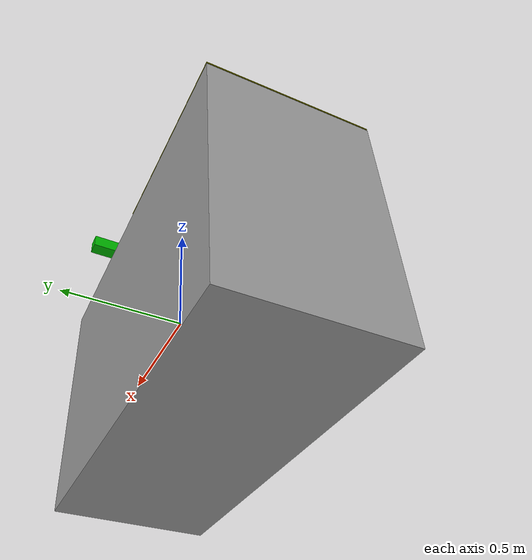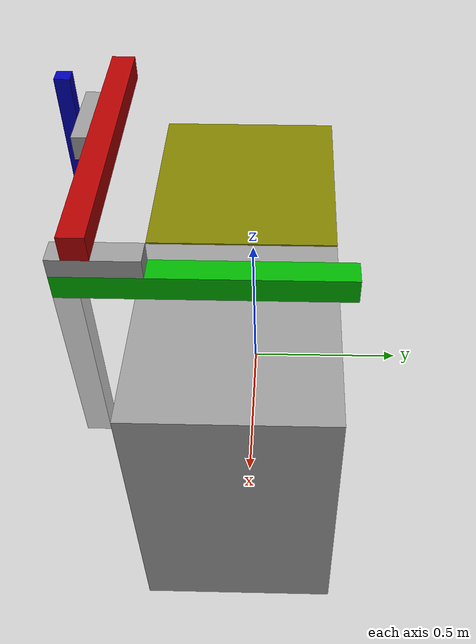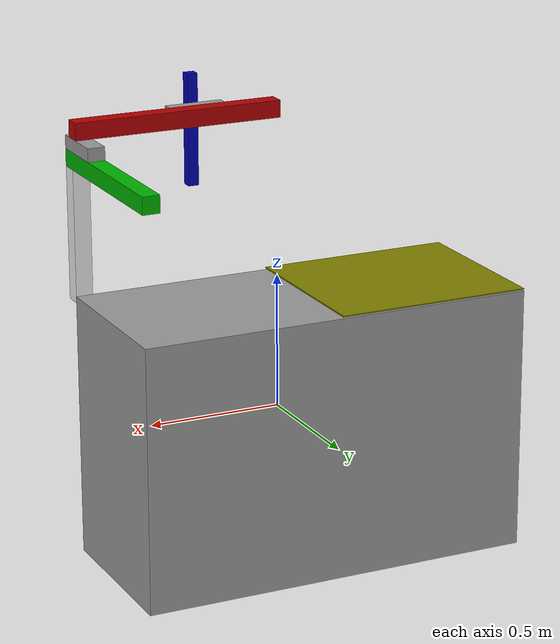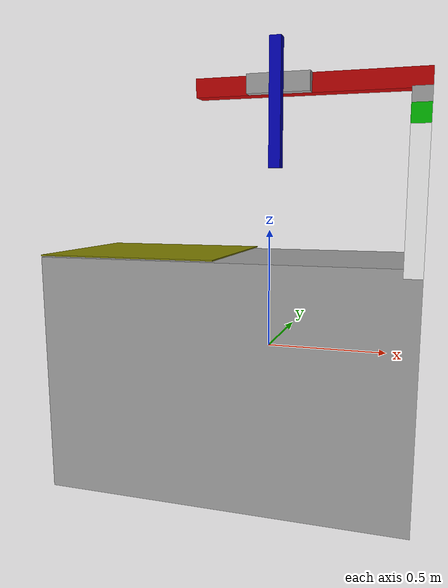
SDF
<?xml version='1.0'?>
<sdf version='1.7'>
  <model name='deman'>
    <link name='link_1'>
      <inertial>
        <mass>1</mass>
        <inertia>
          <ixx>0.166667</ixx>
          <ixy>0</ixy>
          <ixz>0</ixz>
          <iyy>0.166667</iyy>
          <iyz>0</iyz>
          <izz>0.166667</izz>
        </inertia>
        <pose>0 0 0 0 -0 0</pose>
      </inertial>
      <pose>-0.118333 -0.0475 -0.1025 0 -0 0</pose>
      <gravity>1</gravity>
      <self_collide>0</self_collide>
      <kinematic>0</kinematic>
      <enable_wind>0</enable_wind>
      <visual name='visual'>
        <pose>0 0 0 0 -0 0</pose>
        <geometry>
          <box>
            <size>1.5 0.65 1</size>
          </box>
        </geometry>
        <material>
          <lighting>1</lighting>
          <script>
            <uri>file://media/materials/scripts/gazebo.material</uri>
            <name>Gazebo/Grey</name>
          </script>
          <shader type='pixel'>
            <normal_map>__default__</normal_map>
          </shader>
          <ambient>1 1 1 1</ambient>
          <diffuse>0.7 0.7 0.7 1</diffuse>
          <specular>0.01 0.01 0.01 1</specular>
          <emissive>0 0 0 1</emissive>
        </material>
        <transparency>0</transparency>
        <cast_shadows>1</cast_shadows>
      </visual>
      <collision name='collision'>
        <laser_retro>0</laser_retro>
        <max_contacts>10</max_contacts>
        <pose>0 0 0 0 -0 0</pose>
        <geometry>
          <box>
            <size>1.5 0.65 1</size>
          </box>
        </geometry>
        <surface>
          <friction>
            <ode>
              <mu>1</mu>
              <mu2>1</mu2>
              <fdir1>0 0 0</fdir1>
              <slip1>0</slip1>
              <slip2>0</slip2>
            </ode>
            <torsional>
              <coefficient>1</coefficient>
              <patch_radius>0</patch_radius>
              <surface_radius>0</surface_radius>
              <use_patch_radius>1</use_patch_radius>
              <ode>
                <slip>0</slip>
              </ode>
            </torsional>
          </friction>
          <bounce>
            <restitution_coefficient>0</restitution_coefficient>
            <threshold>1e+06</threshold>
          </bounce>
          <contact>
            <collide_without_contact>0</collide_without_contact>
            <collide_without_contact_bitmask>1</collide_without_contact_bitmask>
            <collide_bitmask>1</collide_bitmask>
            <ode>
              <soft_cfm>0</soft_cfm>
              <soft_erp>0.2</soft_erp>
              <kp>1e+13</kp>
              <kd>1</kd>
              <max_vel>0.01</max_vel>
              <min_depth>0</min_depth>
            </ode>
            <bullet>
              <split_impulse>1</split_impulse>
              <split_impulse_penetration_threshold>-0.01</split_impulse_penetration_threshold>
              <soft_cfm>0</soft_cfm>
              <soft_erp>0.2</soft_erp>
              <kp>1e+13</kp>
              <kd>1</kd>
            </bullet>
          </contact>
        </surface>
      </collision>
    </link>
    <link name='link_2'>
      <inertial>
        <mass>1</mass>
        <inertia>
          <ixx>0.166667</ixx>
          <ixy>0</ixy>
          <ixz>0</ixz>
          <iyy>0.166667</iyy>
          <iyz>0</iyz>
          <izz>0.166667</izz>
        </inertia>
        <pose>0 0 0 0 -0 0</pose>
      </inertial>
      <pose>0.599167 -0.405 0.6225 0 -0 0</pose>
      <gravity>1</gravity>
      <self_collide>0</self_collide>
      <kinematic>0</kinematic>
      <enable_wind>0</enable_wind>
      <visual name='visual'>
        <pose>0 0 0 0 -0 0</pose>
        <geometry>
          <box>
            <size>0.065 0.065 0.5</size>
          </box>
        </geometry>
        <material>
          <lighting>1</lighting>
          <script>
            <uri>file://media/materials/scripts/gazebo.material</uri>
            <name>Gazebo/White</name>
          </script>
          <shader type='pixel'>
            <normal_map>__default__</normal_map>
          </shader>
          <ambient>1 1 1 1</ambient>
          <diffuse>0.7 0.7 0.7 1</diffuse>
          <specular>0.01 0.01 0.01 1</specular>
          <emissive>0 0 0 1</emissive>
        </material>
        <transparency>0</transparency>
        <cast_shadows>1</cast_shadows>
      </visual>
      <collision name='collision'>
        <laser_retro>0</laser_retro>
        <max_contacts>10</max_contacts>
        <pose>0 0 0 0 -0 0</pose>
        <geometry>
          <box>
            <size>0.065 0.065 0.5</size>
          </box>
        </geometry>
        <surface>
          <friction>
            <ode>
              <mu>1</mu>
              <mu2>1</mu2>
              <fdir1>0 0 0</fdir1>
              <slip1>0</slip1>
              <slip2>0</slip2>
            </ode>
            <torsional>
              <coefficient>1</coefficient>
              <patch_radius>0</patch_radius>
              <surface_radius>0</surface_radius>
              <use_patch_radius>1</use_patch_radius>
              <ode>
                <slip>0</slip>
              </ode>
            </torsional>
          </friction>
          <bounce>
            <restitution_coefficient>0</restitution_coefficient>
            <threshold>1e+06</threshold>
          </bounce>
          <contact>
            <collide_without_contact>0</collide_without_contact>
            <collide_without_contact_bitmask>1</collide_without_contact_bitmask>
            <collide_bitmask>1</collide_bitmask>
            <ode>
              <soft_cfm>0</soft_cfm>
              <soft_erp>0.2</soft_erp>
              <kp>1e+13</kp>
              <kd>1</kd>
              <max_vel>0.01</max_vel>
              <min_depth>0</min_depth>
            </ode>
            <bullet>
              <split_impulse>1</split_impulse>
              <split_impulse_penetration_threshold>-0.01</split_impulse_penetration_threshold>
              <soft_cfm>0</soft_cfm>
              <soft_erp>0.2</soft_erp>
              <kp>1e+13</kp>
              <kd>1</kd>
            </bullet>
          </contact>
        </surface>
      </collision>
    </link>
    <link name='link_2_clone'>
      <inertial>
        <mass>1</mass>
        <inertia>
          <ixx>0.166667</ixx>
          <ixy>0</ixy>
          <ixz>0</ixz>
          <iyy>0.166667</iyy>
          <iyz>0</iyz>
          <izz>0.166667</izz>
        </inertia>
        <pose>0 0 0 0 -0 0</pose>
      </inertial>
      <pose>0.599167 -0.08 0.905 0 -0 0</pose>
      <gravity>1</gravity>
      <self_collide>0</self_collide>
      <kinematic>0</kinematic>
      <enable_wind>0</enable_wind>
      <visual name='visual'>
        <pose>0 0 0 0 -0 0</pose>
        <geometry>
          <box>
            <size>0.065 0.715 0.065</size>
          </box>
        </geometry>
        <material>
          <lighting>1</lighting>
          <script>
            <uri>file://media/materials/scripts/gazebo.material</uri>
            <name>Gazebo/Grey</name>
          </script>
          <shader type='pixel'>
            <normal_map>__default__</normal_map>
          </shader>
          <ambient>0 0.7 0 1</ambient>
          <diffuse>0.7 0.7 0.7 1</diffuse>
          <specular>0.01 0.01 0.01 1</specular>
          <emissive>0 0 0 1</emissive>
        </material>
        <transparency>0</transparency>
        <cast_shadows>1</cast_shadows>
      </visual>
      <collision name='collision'>
        <laser_retro>0</laser_retro>
        <max_contacts>10</max_contacts>
        <pose>0 0 0 0 -0 0</pose>
        <geometry>
          <box>
            <size>0.065 0.715 0.065</size>
          </box>
        </geometry>
        <surface>
          <friction>
            <ode>
              <mu>1</mu>
              <mu2>1</mu2>
              <fdir1>0 0 0</fdir1>
              <slip1>0</slip1>
              <slip2>0</slip2>
            </ode>
            <torsional>
              <coefficient>1</coefficient>
              <patch_radius>0</patch_radius>
              <surface_radius>0</surface_radius>
              <use_patch_radius>1</use_patch_radius>
              <ode>
                <slip>0</slip>
              </ode>
            </torsional>
          </friction>
          <bounce>
            <restitution_coefficient>0</restitution_coefficient>
            <threshold>1e+06</threshold>
          </bounce>
          <contact>
            <collide_without_contact>0</collide_without_contact>
            <collide_without_contact_bitmask>1</collide_without_contact_bitmask>
            <collide_bitmask>1</collide_bitmask>
            <ode>
              <soft_cfm>0</soft_cfm>
              <soft_erp>0.2</soft_erp>
              <kp>1e+13</kp>
              <kd>1</kd>
              <max_vel>0.01</max_vel>
              <min_depth>0</min_depth>
            </ode>
            <bullet>
              <split_impulse>1</split_impulse>
              <split_impulse_penetration_threshold>-0.01</split_impulse_penetration_threshold>
              <soft_cfm>0</soft_cfm>
              <soft_erp>0.2</soft_erp>
              <kp>1e+13</kp>
              <kd>1</kd>
            </bullet>
          </contact>
        </surface>
      </collision>
    </link>
    <link name='link_3'>
      <inertial>
        <mass>1</mass>
        <inertia>
          <ixx>0.166667</ixx>
          <ixy>0</ixy>
          <ixz>0</ixz>
          <iyy>0.166667</iyy>
          <iyz>0</iyz>
          <izz>0.166667</izz>
        </inertia>
        <pose>0 0 0 0 -0 0</pose>
      </inertial>
      <pose>-0.498333 -0.0475 0.4045 0 -0 0</pose>
      <gravity>1</gravity>
      <self_collide>0</self_collide>
      <kinematic>0</kinematic>
      <enable_wind>0</enable_wind>
      <visual name='visual'>
        <pose>0 0 0 0 -0 0</pose>
        <geometry>
          <box>
            <size>0.74 0.65 0.005</size>
          </box>
        </geometry>
        <material>
          <lighting>1</lighting>
          <script>
            <uri>file://media/materials/scripts/gazebo.material</uri>
            <name>Gazebo/Grey</name>
          </script>
          <shader type='pixel'>
            <normal_map>__default__</normal_map>
          </shader>
          <ambient>0.5 0.5 0 1</ambient>
          <diffuse>0.7 0.7 0.7 1</diffuse>
          <specular>0.01 0.01 0.01 1</specular>
          <emissive>0 0 0 1</emissive>
        </material>
        <transparency>0</transparency>
        <cast_shadows>1</cast_shadows>
      </visual>
      <collision name='collision'>
        <laser_retro>0</laser_retro>
        <max_contacts>10</max_contacts>
        <pose>0 0 0 0 -0 0</pose>
        <geometry>
          <box>
            <size>0.74 0.65 0.005</size>
          </box>
        </geometry>
        <surface>
          <friction>
            <ode>
              <mu>1</mu>
              <mu2>1</mu2>
              <fdir1>0 0 0</fdir1>
              <slip1>0</slip1>
              <slip2>0</slip2>
            </ode>
            <torsional>
              <coefficient>1</coefficient>
              <patch_radius>0</patch_radius>
              <surface_radius>0</surface_radius>
              <use_patch_radius>1</use_patch_radius>
              <ode>
                <slip>0</slip>
              </ode>
            </torsional>
          </friction>
          <bounce>
            <restitution_coefficient>0</restitution_coefficient>
            <threshold>1e+06</threshold>
          </bounce>
          <contact>
            <collide_without_contact>0</collide_without_contact>
            <collide_without_contact_bitmask>1</collide_without_contact_bitmask>
            <collide_bitmask>1</collide_bitmask>
            <ode>
              <soft_cfm>0</soft_cfm>
              <soft_erp>0.2</soft_erp>
              <kp>1e+13</kp>
              <kd>1</kd>
              <max_vel>0.01</max_vel>
              <min_depth>0</min_depth>
            </ode>
            <bullet>
              <split_impulse>1</split_impulse>
              <split_impulse_penetration_threshold>-0.01</split_impulse_penetration_threshold>
              <soft_cfm>0</soft_cfm>
              <soft_erp>0.2</soft_erp>
              <kp>1e+13</kp>
              <kd>1</kd>
            </bullet>
          </contact>
        </surface>
      </collision>
    </link>
    <link name='link_4'>
      <inertial>
        <mass>1</mass>
        <inertia>
          <ixx>0.166667</ixx>
          <ixy>0</ixy>
          <ixz>0</ixz>
          <iyy>0.166667</iyy>
          <iyz>0</iyz>
          <izz>0.166667</izz>
        </inertia>
        <pose>0 0 0 0 -0 0</pose>
      </inertial>
      <pose>0.599167 -0.3275 0.9625 0 -0 0</pose>
      <gravity>1</gravity>
      <self_collide>0</self_collide>
      <kinematic>0</kinematic>
      <enable_wind>0</enable_wind>
      <visual name='visual'>
        <pose>0 0 0 0 -0 0</pose>
        <geometry>
          <box>
            <size>0.065 0.22 0.05</size>
          </box>
        </geometry>
        <material>
          <lighting>1</lighting>
          <script>
            <uri>file://media/materials/scripts/gazebo.material</uri>
            <name>Gazebo/Grey</name>
          </script>
          <shader type='pixel'>
            <normal_map>__default__</normal_map>
          </shader>
          <ambient>0.3 0.3 0.3 1</ambient>
          <diffuse>0.7 0.7 0.7 1</diffuse>
          <specular>0.01 0.01 0.01 1</specular>
          <emissive>0 0 0 1</emissive>
        </material>
        <transparency>0</transparency>
        <cast_shadows>1</cast_shadows>
      </visual>
      <collision name='collision'>
        <laser_retro>0</laser_retro>
        <max_contacts>10</max_contacts>
        <pose>0 0 0 0 -0 0</pose>
        <geometry>
          <box>
            <size>0.0143 0.0484 0.0025</size>
          </box>
        </geometry>
        <surface>
          <friction>
            <ode>
              <mu>1</mu>
              <mu2>1</mu2>
              <fdir1>0 0 0</fdir1>
              <slip1>0</slip1>
              <slip2>0</slip2>
            </ode>
            <torsional>
              <coefficient>1</coefficient>
              <patch_radius>0</patch_radius>
              <surface_radius>0</surface_radius>
              <use_patch_radius>1</use_patch_radius>
              <ode>
                <slip>0</slip>
              </ode>
            </torsional>
          </friction>
          <bounce>
            <restitution_coefficient>0</restitution_coefficient>
            <threshold>1e+06</threshold>
          </bounce>
          <contact>
            <collide_without_contact>0</collide_without_contact>
            <collide_without_contact_bitmask>1</collide_without_contact_bitmask>
            <collide_bitmask>1</collide_bitmask>
            <ode>
              <soft_cfm>0</soft_cfm>
              <soft_erp>0.2</soft_erp>
              <kp>1e+13</kp>
              <kd>1</kd>
              <max_vel>0.01</max_vel>
              <min_depth>0</min_depth>
            </ode>
            <bullet>
              <split_impulse>1</split_impulse>
              <split_impulse_penetration_threshold>-0.01</split_impulse_penetration_threshold>
              <soft_cfm>0</soft_cfm>
              <soft_erp>0.2</soft_erp>
              <kp>1e+13</kp>
              <kd>1</kd>
            </bullet>
          </contact>
        </surface>
      </collision>
    </link>
    <link name='link_5'>
      <inertial>
        <mass>1</mass>
        <inertia>
          <ixx>0.166667</ixx>
          <ixy>0</ixy>
          <ixz>0</ixz>
          <iyy>0.166667</iyy>
          <iyz>0</iyz>
          <izz>0.166667</izz>
        </inertia>
        <pose>0 0 0 0 -0 0</pose>
      </inertial>
      <pose>0.229167 -0.36625 1.02 0 -0 0</pose>
      <gravity>1</gravity>
      <self_collide>0</self_collide>
      <kinematic>0</kinematic>
      <enable_wind>0</enable_wind>
      <visual name='visual'>
        <pose>0 0 0 0 -0 0</pose>
        <geometry>
          <box>
            <size>0.805 0.065 0.065</size>
          </box>
        </geometry>
        <material>
          <lighting>1</lighting>
          <script>
            <uri>file://media/materials/scripts/gazebo.material</uri>
            <name>Gazebo/Grey</name>
          </script>
          <shader type='pixel'>
            <normal_map>__default__</normal_map>
          </shader>
          <ambient>0.7 0 0 1</ambient>
          <diffuse>0.7 0.7 0.7 1</diffuse>
          <specular>0.01 0.01 0.01 1</specular>
          <emissive>0 0 0 1</emissive>
        </material>
        <transparency>0</transparency>
        <cast_shadows>1</cast_shadows>
      </visual>
      <collision name='collision'>
        <laser_retro>0</laser_retro>
        <max_contacts>10</max_contacts>
        <pose>0 0 0 0 -0 0</pose>
        <geometry>
          <box>
            <size>0.805 0.065 0.065</size>
          </box>
        </geometry>
        <surface>
          <friction>
            <ode>
              <mu>1</mu>
              <mu2>1</mu2>
              <fdir1>0 0 0</fdir1>
              <slip1>0</slip1>
              <slip2>0</slip2>
            </ode>
            <torsional>
              <coefficient>1</coefficient>
              <patch_radius>0</patch_radius>
              <surface_radius>0</surface_radius>
              <use_patch_radius>1</use_patch_radius>
              <ode>
                <slip>0</slip>
              </ode>
            </torsional>
          </friction>
          <bounce>
            <restitution_coefficient>0</restitution_coefficient>
            <threshold>1e+06</threshold>
          </bounce>
          <contact>
            <collide_without_contact>0</collide_without_contact>
            <collide_without_contact_bitmask>1</collide_without_contact_bitmask>
            <collide_bitmask>1</collide_bitmask>
            <ode>
              <soft_cfm>0</soft_cfm>
              <soft_erp>0.2</soft_erp>
              <kp>1e+13</kp>
              <kd>1</kd>
              <max_vel>0.01</max_vel>
              <min_depth>0</min_depth>
            </ode>
            <bullet>
              <split_impulse>1</split_impulse>
              <split_impulse_penetration_threshold>-0.01</split_impulse_penetration_threshold>
              <soft_cfm>0</soft_cfm>
              <soft_erp>0.2</soft_erp>
              <kp>1e+13</kp>
              <kd>1</kd>
            </bullet>
          </contact>
        </surface>
      </collision>
    </link>
    <link name='link_6'>
      <inertial>
        <mass>1</mass>
        <inertia>
          <ixx>0.166667</ixx>
          <ixy>0</ixy>
          <ixz>0</ixz>
          <iyy>0.166667</iyy>
          <iyz>0</iyz>
          <izz>0.166667</izz>
        </inertia>
        <pose>0 0 0 0 -0 0</pose>
      </inertial>
      <pose>0.131667 -0.41875 1.02 0 -0 0</pose>
      <gravity>1</gravity>
      <self_collide>0</self_collide>
      <kinematic>0</kinematic>
      <enable_wind>0</enable_wind>
      <visual name='visual'>
        <pose>0 0 0 0 -0 0</pose>
        <geometry>
          <box>
            <size>0.22 0.04 0.065</size>
          </box>
        </geometry>
        <material>
          <lighting>1</lighting>
          <script>
            <uri>file://media/materials/scripts/gazebo.material</uri>
            <name>Gazebo/Grey</name>
          </script>
          <shader type='pixel'>
            <normal_map>__default__</normal_map>
          </shader>
          <ambient>0.3 0.3 0.3 1</ambient>
          <diffuse>0.7 0.7 0.7 1</diffuse>
          <specular>0.01 0.01 0.01 1</specular>
          <emissive>0 0 0 1</emissive>
        </material>
        <transparency>0</transparency>
        <cast_shadows>1</cast_shadows>
      </visual>
      <collision name='collision'>
        <laser_retro>0</laser_retro>
        <max_contacts>10</max_contacts>
        <pose>0 0 0 0 -0 0</pose>
        <geometry>
          <box>
            <size>0.22 0.04 0.065</size>
          </box>
        </geometry>
        <surface>
          <friction>
            <ode>
              <mu>1</mu>
              <mu2>1</mu2>
              <fdir1>0 0 0</fdir1>
              <slip1>0</slip1>
              <slip2>0</slip2>
            </ode>
            <torsional>
              <coefficient>1</coefficient>
              <patch_radius>0</patch_radius>
              <surface_radius>0</surface_radius>
              <use_patch_radius>1</use_patch_radius>
              <ode>
                <slip>0</slip>
              </ode>
            </torsional>
          </friction>
          <bounce>
            <restitution_coefficient>0</restitution_coefficient>
            <threshold>1e+06</threshold>
          </bounce>
          <contact>
            <collide_without_contact>0</collide_without_contact>
            <collide_without_contact_bitmask>1</collide_without_contact_bitmask>
            <collide_bitmask>1</collide_bitmask>
            <ode>
              <soft_cfm>0</soft_cfm>
              <soft_erp>0.2</soft_erp>
              <kp>1e+13</kp>
              <kd>1</kd>
              <max_vel>0.01</max_vel>
              <min_depth>0</min_depth>
            </ode>
            <bullet>
              <split_impulse>1</split_impulse>
              <split_impulse_penetration_threshold>-0.01</split_impulse_penetration_threshold>
              <soft_cfm>0</soft_cfm>
              <soft_erp>0.2</soft_erp>
              <kp>1e+13</kp>
              <kd>1</kd>
            </bullet>
          </contact>
        </surface>
      </collision>
    </link>
    <link name='link_7'>
      <inertial>
        <mass>1</mass>
        <inertia>
          <ixx>0.166667</ixx>
          <ixy>0</ixy>
          <ixz>0</ixz>
          <iyy>0.166667</iyy>
          <iyz>0</iyz>
          <izz>0.166667</izz>
        </inertia>
        <pose>0 0 0 0 -0 0</pose>
      </inertial>
      <pose>0.131667 -0.45875 0.949 0 -0 0</pose>
      <gravity>1</gravity>
      <self_collide>0</self_collide>
      <kinematic>0</kinematic>
      <enable_wind>0</enable_wind>
      <visual name='visual'>
        <pose>0 0 0 0 -0 0</pose>
        <geometry>
          <box>
            <size>0.04 0.04 0.422</size>
          </box>
        </geometry>
        <material>
          <lighting>1</lighting>
          <script>
            <uri>file://media/materials/scripts/gazebo.material</uri>
            <name>Gazebo/Grey</name>
          </script>
          <shader type='pixel'>
            <normal_map>__default__</normal_map>
          </shader>
          <ambient>0 0 0.7 1</ambient>
          <diffuse>0.7 0.7 0.7 1</diffuse>
          <specular>0.01 0.01 0.01 1</specular>
          <emissive>0 0 0 1</emissive>
        </material>
        <transparency>0</transparency>
        <cast_shadows>1</cast_shadows>
      </visual>
      <collision name='collision'>
        <laser_retro>0</laser_retro>
        <max_contacts>10</max_contacts>
        <pose>0 0 0 0 -0 0</pose>
        <geometry>
          <box>
            <size>0.04 0.04 0.422</size>
          </box>
        </geometry>
        <surface>
          <friction>
            <ode>
              <mu>1</mu>
              <mu2>1</mu2>
              <fdir1>0 0 0</fdir1>
              <slip1>0</slip1>
              <slip2>0</slip2>
            </ode>
            <torsional>
              <coefficient>1</coefficient>
              <patch_radius>0</patch_radius>
              <surface_radius>0</surface_radius>
              <use_patch_radius>1</use_patch_radius>
              <ode>
                <slip>0</slip>
              </ode>
            </torsional>
          </friction>
          <bounce>
            <restitution_coefficient>0</restitution_coefficient>
            <threshold>1e+06</threshold>
          </bounce>
          <contact>
            <collide_without_contact>0</collide_without_contact>
            <collide_without_contact_bitmask>1</collide_without_contact_bitmask>
            <collide_bitmask>1</collide_bitmask>
            <ode>
              <soft_cfm>0</soft_cfm>
              <soft_erp>0.2</soft_erp>
              <kp>1e+13</kp>
              <kd>1</kd>
              <max_vel>0.01</max_vel>
              <min_depth>0</min_depth>
            </ode>
            <bullet>
              <split_impulse>1</split_impulse>
              <split_impulse_penetration_threshold>-0.01</split_impulse_penetration_threshold>
              <soft_cfm>0</soft_cfm>
              <soft_erp>0.2</soft_erp>
              <kp>1e+13</kp>
              <kd>1</kd>
            </bullet>
          </contact>
        </surface>
      </collision>
    </link>
    <joint name='link_1_JOINT_0' type='fixed'>
      <parent>link_1</parent>
      <child>link_2</child>
      <pose>0 0 0 0 -0 0</pose>
      <physics>
        <ode>
          <limit>
            <cfm>0</cfm>
            <erp>0.2</erp>
          </limit>
          <suspension>
            <cfm>0</cfm>
            <erp>0.2</erp>
          </suspension>
        </ode>
      </physics>
    </joint>
    <joint name='link_1_JOINT_2' type='prismatic'>
      <parent>link_1</parent>
      <child>link_3</child>
      <pose>0 0 0 0 -0 0</pose>
      <axis>
        <xyz>1 0 0</xyz>
        <limit>
          <lower>-1.79769e+308</lower>
          <upper>1.79769e+308</upper>
          <effort>-1</effort>
          <velocity>-1</velocity>
        </limit>
        <dynamics>
          <spring_reference>0</spring_reference>
          <spring_stiffness>0</spring_stiffness>
          <damping>0</damping>
          <friction>0</friction>
        </dynamics>
      </axis>
      <physics>
        <ode>
          <limit>
            <cfm>0</cfm>
            <erp>0.2</erp>
          </limit>
          <suspension>
            <cfm>0</cfm>
            <erp>0.2</erp>
          </suspension>
        </ode>
      </physics>
    </joint>
    <joint name='link_2_JOINT_1' type='fixed'>
      <parent>link_2</parent>
      <child>link_2_clone</child>
      <pose>0 0 0 0 -0 0</pose>
      <physics>
        <ode>
          <limit>
            <cfm>0</cfm>
            <erp>0.2</erp>
          </limit>
          <suspension>
            <cfm>0</cfm>
            <erp>0.2</erp>
          </suspension>
        </ode>
      </physics>
    </joint>
    <joint name='link_2_clone_JOINT_3' type='prismatic'>
      <parent>link_2_clone</parent>
      <child>link_4</child>
      <pose>0 0 0 0 -0 0</pose>
      <axis>
        <xyz>0 1 0</xyz>
        <limit>
          <lower>-0.325</lower>
          <upper>0.325</upper>
          <effort>-1</effort>
          <velocity>-1</velocity>
        </limit>
        <dynamics>
          <spring_reference>0</spring_reference>
          <spring_stiffness>0</spring_stiffness>
          <damping>0</damping>
          <friction>0</friction>
        </dynamics>
      </axis>
      <physics>
        <ode>
          <limit>
            <cfm>0</cfm>
            <erp>0.2</erp>
          </limit>
          <suspension>
            <cfm>0</cfm>
            <erp>0.2</erp>
          </suspension>
        </ode>
      </physics>
    </joint>
    <joint name='link_4_JOINT_4' type='fixed'>
      <parent>link_4</parent>
      <child>link_5</child>
      <pose>0 0 0 0 -0 0</pose>
      <physics>
        <ode>
          <limit>
            <cfm>0</cfm>
            <erp>0.2</erp>
          </limit>
          <suspension>
            <cfm>0</cfm>
            <erp>0.2</erp>
          </suspension>
        </ode>
      </physics>
    </joint>
    <joint name='link_5_JOINT_5' type='prismatic'>
      <parent>link_5</parent>
      <child>link_6</child>
      <pose>0 0 0 0 -0 0</pose>
      <axis>
        <xyz>1 0 0</xyz>
        <limit>
          <lower>-1.79769e+308</lower>
          <upper>1.79769e+308</upper>
          <effort>-1</effort>
          <velocity>-1</velocity>
        </limit>
        <dynamics>
          <spring_reference>0</spring_reference>
          <spring_stiffness>0</spring_stiffness>
          <damping>0</damping>
          <friction>0</friction>
        </dynamics>
      </axis>
      <physics>
        <ode>
          <limit>
            <cfm>0</cfm>
            <erp>0.2</erp>
          </limit>
          <suspension>
            <cfm>0</cfm>
            <erp>0.2</erp>
          </suspension>
        </ode>
      </physics>
    </joint>
    <joint name='link_6_JOINT_6' type='prismatic'>
      <parent>link_6</parent>
      <child>link_7</child>
      <pose>0 0 0 0 -0 0</pose>
      <axis>
        <xyz>0 0 1</xyz>
        <limit>
          <lower>-1.79769e+308</lower>
          <upper>1.79769e+308</upper>
          <effort>-1</effort>
          <velocity>-1</velocity>
        </limit>
        <dynamics>
          <spring_reference>0</spring_reference>
          <spring_stiffness>0</spring_stiffness>
          <damping>0</damping>
          <friction>0</friction>
        </dynamics>
      </axis>
      <physics>
        <ode>
          <limit>
            <cfm>0</cfm>
            <erp>0.2</erp>
          </limit>
          <suspension>
            <cfm>0</cfm>
            <erp>0.2</erp>
          </suspension>
        </ode>
      </physics>
    </joint>
    <static>0</static>
    <allow_auto_disable>1</allow_auto_disable>
  </model>
</sdf>
